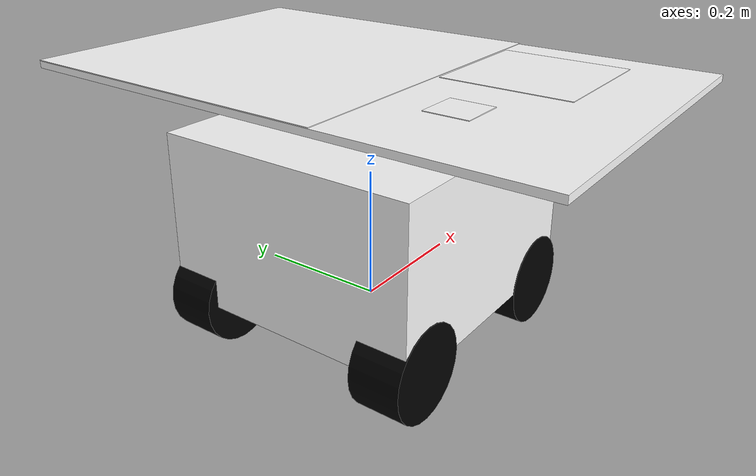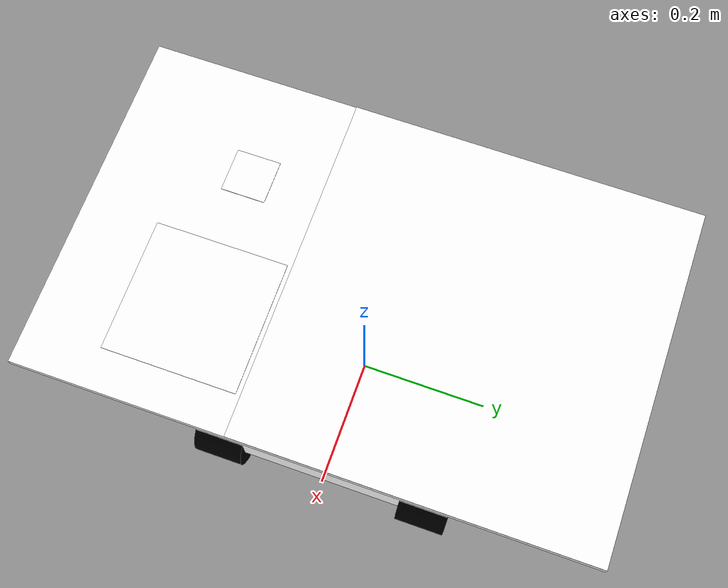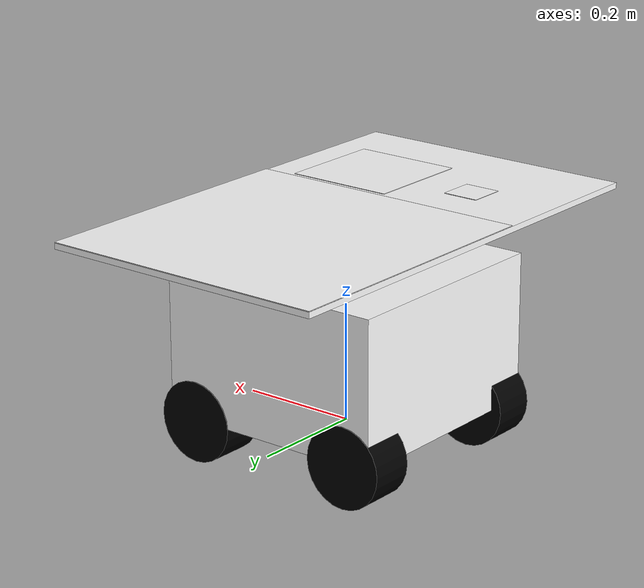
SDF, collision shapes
<?xml version="1.0" encoding="UTF-8"?>
<sdf version="1.9">

  <model name="r1_rover_with_apriltag">
    <static>false</static>

    <!-- ================= R1 Rover ================= -->
    <include>
      <uri>model://r1_rover</uri>
      <name>r1</name>
      <pose>0 0 0 0 0 0</pose>
    </include>

    <!-- ================= AprilTag ================= -->

      <!-- Mounted on top of rover -->

    <!-- ================= Fixed Joint ================= -->

    <!-- Multiple Apriltag board -->
    <link name="background_board">
      <pose>0 0 0.35 0 0 0</pose>
      <visual name="board_visual">
        <geometry>
          <box>
            <size>0.5 0.8 0.01</size> </box>
        </geometry>
        <material>
          <ambient>1 1 1 1</ambient>
          <diffuse>1 1 1 1</diffuse>
        </material>
      </visual>
      <collision name="board_collision">
        <geometry>
          <box>
            <size>0.5 0.8 0.01</size>
          </box>
        </geometry>
      </collision>
    </link>

    <joint name="board_joint" type="fixed">
      <parent>r1::base_link</parent>
      <child>background_board</child>
    </joint>

    <include>
      <uri>model://apriltag_36h11_23_400mm</uri>
      <name>apriltag_large</name>
      <pose>0 0.15 0.356 0 0 0</pose> </include>

    <joint name="apriltag_large_joint" type="fixed">
      <parent>background_board</parent>
      <child>apriltag_large::apriltag_36h11_23_400mm_link</child>
    </joint>

    <include>
      <uri>model://apriltag_36h11_11_150mm</uri>
      <name>apriltag_medium</name>
      <pose>0.1 -0.20 0.357 0 0 0</pose> </include>

    <joint name="apriltag_medium_joint" type="fixed">
      <parent>background_board</parent>
      <child>apriltag_medium::apriltag_36h11_11_150mm_link</child>
    </joint>

    <include>
      <uri>model://apriltag_36h11_19_50mm</uri>
      <name>apriltag_small</name>
      <pose>-0.1 -0.20 0.358 0 0 0</pose> </include>

    <joint name="apriltag_small_joint" type="fixed">
      <parent>background_board</parent>
      <child>apriltag_small::apriltag_36h11_19_50mm_link</child>
    </joint>

  </model>

</sdf>

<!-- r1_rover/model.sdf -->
<sdf version='1.6'>
	<model name='r1_rover'>
	<link name='base_link'>
			<pose>0 0 0 0 -0 0</pose>
			<inertial>
				<pose>0 0 0 0 -0 0</pose>
				<mass>20.0</mass>
				<inertia>
					<ixx>0.37083</ixx>
					<ixy>0.0</ixy>
					<ixz>0.0</ixz>
					<iyy>0.37083</iyy>
					<iyz>0.0</iyz>
					<izz>0.53333</izz>
				</inertia>
			</inertial>
			<collision name='odom_fixed_joint_lump__base_link_collision'>
				<pose>0 0 0.15 0 -0 0</pose>
				<geometry>
					<box>
					<size>0.4 0.4 0.25</size>
					</box>
				</geometry>
				<surface>
					<contact>
						<ode/>
					</contact>
					<friction>
						<ode/>
					</friction>
				</surface>
			</collision>
			<visual name='odom_fixed_joint_lump__base_link_visual'>
				<pose>0 0 0 0 -0 0</pose>
				<geometry>
					<mesh>
						<scale>1 1 1</scale>
						<uri>model://r1_rover/meshes/chassis_link.STL</uri>
					</mesh>
				</geometry>
				<material>
					<diffuse>1.0 1.0 1.0</diffuse>
					<specular>1.0 1.0 1.0</specular>
				</material>
			</visual>
			<visual name='odom_fixed_joint_lump__top_link_visual_1'>
				<pose>0 0 0.114486 0 -0 0</pose>
				<geometry>
					<mesh>
						<scale>1 1 1</scale>
						<uri>model://r1_rover/meshes/top_link.STL</uri>
					</mesh>
				</geometry>
				<material>
					<diffuse>1.0 1.0 1.0</diffuse>
					<specular>1.0 1.0 1.0</specular>
				</material>
			</visual>
			<visual name='odom_fixed_joint_lump__battery_link_visual_2'>
				<pose>-0.09302 -0.000128 0.114486 0 -0 0</pose>
				<geometry>
					<mesh>
						<scale>1 1 1</scale>
						<uri>model://r1_rover/meshes/battery_link.STL</uri>
					</mesh>
				</geometry>
				<material>
					<diffuse>0.0 0.0 0.0</diffuse>
					<specular>0.5 0.5 0.5</specular>
				</material>
			</visual>
			<visual name='odom_fixed_joint_lump__housing_link_visual_3'>
				<pose>0.03473 0 0.114486 0 -0 0</pose>
				<geometry>
					<mesh>
						<scale>1 1 1</scale>
						<uri>model://r1_rover/meshes/housing_link.STL</uri>
					</mesh>
				</geometry>
				<material>
					<diffuse>0.0 0.0 0.0</diffuse>
					<specular>0.5 0.5 0.5</specular>
				</material>
			</visual>
			<visual name='odom_fixed_joint_lump__l_antenna_link_visual_4'>
				<pose>-0.1565 0.0762 0.114486 0 -0 0</pose>
				<geometry>
					<mesh>
						<scale>1 1 1</scale>
						<uri>model://r1_rover/meshes/antenna_link.STL</uri>
					</mesh>
				</geometry>
				<material>
					<diffuse>0.0 0.0 0.0</diffuse>
					<specular>0.5 0.5 0.5</specular>
				</material>
			</visual>
			<visual name='odom_fixed_joint_lump__r_antenna_link_visual_5'>
				<pose>-0.1565 -0.0762 0.114486 0 -0 0</pose>
				<geometry>
					<mesh>
						<scale>1 1 1</scale>
						<uri>model://r1_rover/meshes/antenna_link.STL</uri>
					</mesh>
				</geometry>
				<material>
					<diffuse>0.0 0.0 0.0</diffuse>
					<specular>0.5 0.5 0.5</specular>
				</material>
			</visual>
			<velocity_decay/>
			<velocity_decay/>
			<velocity_decay/>
			<velocity_decay/>
			<velocity_decay/>
			<gravity>1</gravity>
			<velocity_decay/>
			<sensor name="imu_sensor" type="imu">
				<always_on>1</always_on>
				<update_rate>250</update_rate>
				<imu>
					<angular_velocity>
						<x>
						<noise type="gaussian">
							<mean>0</mean>
							<stddev>0.0003394</stddev>
							<dynamic_bias_stddev>3.8785e-05</dynamic_bias_stddev>
							<dynamic_bias_correlation_time>1000</dynamic_bias_correlation_time>
						</noise>
						</x>
						<y>
						<noise type="gaussian">
							<mean>0</mean>
							<stddev>0.0003394</stddev>
							<dynamic_bias_stddev>3.8785e-05</dynamic_bias_stddev>
							<dynamic_bias_correlation_time>1000</dynamic_bias_correlation_time>
						</noise>
						</y>
						<z>
						<noise type="gaussian">
							<mean>0</mean>
							<stddev>0.0003394</stddev>
							<dynamic_bias_stddev>3.8785e-05</dynamic_bias_stddev>
							<dynamic_bias_correlation_time>1000</dynamic_bias_correlation_time>
						</noise>
						</z>
					</angular_velocity>
					<linear_acceleration>
						<x>
						<noise type="gaussian">
							<mean>0</mean>
							<stddev>0.004</stddev>
							<dynamic_bias_stddev>0.006</dynamic_bias_stddev>
							<dynamic_bias_correlation_time>300</dynamic_bias_correlation_time>
						</noise>
						</x>
						<y>
						<noise type="gaussian">
							<mean>0</mean>
							<stddev>0.004</stddev>
							<dynamic_bias_stddev>0.006</dynamic_bias_stddev>
							<dynamic_bias_correlation_time>300</dynamic_bias_correlation_time>
						</noise>
						</y>
						<z>
						<noise type="gaussian">
							<mean>0</mean>
							<stddev>0.004</stddev>
							<dynamic_bias_stddev>0.006</dynamic_bias_stddev>
							<dynamic_bias_correlation_time>300</dynamic_bias_correlation_time>
						</noise>
						</z>
					</linear_acceleration>
				</imu>
			</sensor>
			<sensor name="air_pressure_sensor" type="air_pressure">
				<always_on>1</always_on>
				<update_rate>50</update_rate>
				<air_pressure>
					<pressure>
						<noise type="gaussian">
							<mean>0</mean>
							<stddev>0.01</stddev>
						</noise>
					</pressure>
				</air_pressure>
			</sensor>
			<sensor name="magnetometer_sensor" type="magnetometer">
				<always_on>1</always_on>
				<update_rate>100</update_rate>
				<magnetometer>
				<!-- TODO: update to fix units and coordinate system when we move past Harmonic -->
				<!-- See https://github.com/gazebosim/gz-sim/pull/2460 -->
				<!-- 3mgauss RMS: NOTE: noise is in tesla but sensor reports data in gauss -->
				<!-- Noise modeled after IIS2MDC -->
					<x>
						<noise type="gaussian">
						<stddev>0.0001</stddev>
						</noise>
					</x>
					<y>
						<noise type="gaussian">
						<stddev>0.0001</stddev>
						</noise>
					</y>
					<z>
						<noise type="gaussian">
						<stddev>0.0001</stddev>
						</noise>
					</z>
				</magnetometer>
			</sensor>
			<sensor name="navsat_sensor" type="navsat">
				<always_on>1</always_on>
				<update_rate>30</update_rate>
			</sensor>
		</link>
		<link name='lf_wheel_link'>
			<pose>0.15 0.16317 0.0215 0 -0 0</pose>
			<inertial>
				<pose>0 0 0 1.57079632679 0 0</pose>
				<mass>0.414</mass>
				<inertia>
					<ixx>0.00068682</ixx>
					<ixy>0</ixy>
					<ixz>0</ixz>
					<iyy>0.00068682</iyy>
					<iyz>0</iyz>
					<izz>0.00097299</izz>
				</inertia>
			</inertial>
			<collision name='lf_wheel_link_collision'>
				<pose>0 0 0 1.57079632679 0 0</pose>
				<geometry>
					<cylinder>
						<radius>0.0686</radius>
						<length>0.0762</length>
					</cylinder>
				</geometry>
				<max_contacts>1</max_contacts>
				<surface>
					<friction>
						<torsional>
							<coefficient>0.25</coefficient>
							<use_patch_radius>1</use_patch_radius>
							<surface_radius>0.0686</surface_radius>
						</torsional>
						<ode>
							<mu>1.0</mu>
							<mu2>1.0</mu2>
							<fdir1>1 0 0</fdir1>
							<slip1>0.0</slip1>
							<slip2>0.0</slip2>
						</ode>
					</friction>
					<bounce>
						<restitution_coefficient>0</restitution_coefficient>
						<threshold>1e6</threshold>
					</bounce>
					<contact>
						<ode>
							<min_depth>0.001</min_depth>
							<max_vel>0.0</max_vel>
							<kp>1.0e6</kp>
							<kd>100.0</kd>
						</ode>
					</contact>
				</surface>
			</collision>
			<visual name='lf_wheel_link_visual'>
				<pose>0 0 0 0 -0 0</pose>
				<geometry>
					<mesh>
						<scale>1 1 1</scale>
						<uri>model://r1_rover/meshes/wheel_link.STL</uri>
					</mesh>
				</geometry>
				<material>
					<diffuse>0.0 0.0 0.0</diffuse>
					<specular>0.5 0.5 0.5</specular>
				</material>
			</visual>
			<gravity>1</gravity>
			<velocity_decay/>
		</link>
		<joint name='motor_0' type='revolute'>
			<child>lf_wheel_link</child>
			<parent>base_link</parent>
			<axis>
				<xyz>0 1 0</xyz>
				<limit>
					<lower>-1e+16</lower>
					<upper>1e+16</upper>
				</limit>
				<dynamics>
					<spring_reference>0</spring_reference>
					<spring_stiffness>0</spring_stiffness>
				</dynamics>
				<use_parent_model_frame>1</use_parent_model_frame>
			</axis>
		</joint>
		<link name='lb_wheel_link'>
			<pose>-0.15 0.16317 0.0215 0 -0 0</pose>
			<inertial>
			<pose>0 0 0 1.57079632679 0 0</pose>
			<mass>0.414</mass>
				<inertia>
					<ixx>0.00068682</ixx>
					<ixy>0</ixy>
					<ixz>0</ixz>
					<iyy>0.00068682</iyy>
					<iyz>0</iyz>
					<izz>0.00097299</izz>
				</inertia>
			</inertial>
			<collision name='lb_wheel_link_collision'>
				<pose>0 0 0 1.57079632679 0 0</pose>
				<geometry>
					<cylinder>
						<radius>0.0686</radius>
						<length>0.0762</length>
					</cylinder>
				</geometry>
				<max_contacts>1</max_contacts>
				<surface>
					<friction>
					<torsional>
						<coefficient>0.25</coefficient>
						<use_patch_radius>1</use_patch_radius>
						<surface_radius>0.0686</surface_radius>
					</torsional>
					<ode>
						<mu>1.0</mu>
						<mu2>1.0</mu2>
						<fdir1>1 0 0</fdir1>
						<slip1>0.0</slip1>
						<slip2>0.0</slip2>
					</ode>
					</friction>
					<bounce>
						<restitution_coefficient>0</restitution_coefficient>
						<threshold>1e6</threshold>
					</bounce>
					<contact>
					<ode>
						<min_depth>0.001</min_depth>
						<max_vel>0.0</max_vel>
						<kp>1.0e6</kp>
						<kd>100.0</kd>
					</ode>
					</contact>
				</surface>
			</collision>
			<visual name='lb_wheel_link_visual'>
				<pose>0 0 0 0 -0 0</pose>
					<geometry>
						<mesh>
							<scale>1 1 1</scale>
							<uri>model://r1_rover/meshes/wheel_link.STL</uri>
						</mesh>
					</geometry>
					<material>
						<diffuse>0.0 0.0 0.0</diffuse>
						<specular>0.5 0.5 0.5</specular>
					</material>
			</visual>
			<gravity>1</gravity>
			<velocity_decay/>
		</link>
		<joint name='motor_1' type='revolute'>
			<child>lb_wheel_link</child>
			<parent>base_link</parent>
			<axis>
				<xyz>0 1 0</xyz>
				<limit>
					<lower>-1e+16</lower>
					<upper>1e+16</upper>
				</limit>
				<dynamics>
					<spring_reference>0</spring_reference>
					<spring_stiffness>0</spring_stiffness>
				</dynamics>
				<use_parent_model_frame>1</use_parent_model_frame>
			</axis>
		</joint>
		<link name='rf_wheel_link'>
			<pose>0.15 -0.16317 0.0215 0 -0 0</pose>
			<inertial>
				<pose>0 0 0 1.57079632679 0 0</pose>
				<mass>0.414</mass>
				<inertia>
					<ixx>0.00068682</ixx>
					<ixy>0</ixy>
					<ixz>0</ixz>
					<iyy>0.00068682</iyy>
					<iyz>0</iyz>
					<izz>0.00097299</izz>
				</inertia>
			</inertial>
			<collision name='rf_wheel_link_collision'>
				<pose>0 0 0 1.57079632679 0 0</pose>
				<geometry>
					<cylinder>
						<radius>0.0686</radius>
						<length>0.0762</length>
					</cylinder>
				</geometry>
				<max_contacts>1</max_contacts>
				<surface>
					<friction>
					<torsional>
					<coefficient>0.25</coefficient>
					<use_patch_radius>1</use_patch_radius>
					<surface_radius>0.0686</surface_radius>
					</torsional>
					<ode>
					<mu>1.0</mu>
					<mu2>1.0</mu2>
					<fdir1>1 0 0</fdir1>
					<slip1>0.0</slip1>
					<slip2>0.0</slip2>
					</ode>
					</friction>
					<bounce>
					<restitution_coefficient>0</restitution_coefficient>
					<threshold>1e6</threshold>
					</bounce>
					<contact>
					<ode>
					<min_depth>0.001</min_depth>
					<max_vel>0.0</max_vel>
					<kp>1.0e6</kp>
					<kd>100.0</kd>
					</ode>
					</contact>
				</surface>
			</collision>
			<visual name='rf_wheel_link_visual'>
				<pose>0 0 0 0 -0 0</pose>
				<geometry>
					<mesh>
						<scale>1 1 1</scale>
						<uri>model://r1_rover/meshes/wheel_link.STL</uri>
					</mesh>
				</geometry>
				<material>
					<diffuse>0.0 0.0 0.0</diffuse>
					<specular>0.5 0.5 0.5</specular>
				</material>
			</visual>
			<gravity>1</gravity>
			<velocity_decay/>
		</link>
		<joint name='motor_2' type='revolute'>
			<child>rf_wheel_link</child>
			<parent>base_link</parent>
			<axis>
				<xyz>0 1 0</xyz>
				<limit>
					<lower>-1e+16</lower>
					<upper>1e+16</upper>
				</limit>
				<dynamics>
					<spring_reference>0</spring_reference>
					<spring_stiffness>0</spring_stiffness>
				</dynamics>
				<use_parent_model_frame>1</use_parent_model_frame>
			</axis>
		</joint>
		<link name='rb_wheel_link'>
			<pose>-0.15 -0.16317 0.0215 0 -0 0</pose>
			<inertial>
				<pose>0 0 0 1.57079632679 0 0</pose>
				<mass>0.414</mass>
				<inertia>
					<ixx>0.00068682</ixx>
					<ixy>0</ixy>
					<ixz>0</ixz>
					<iyy>0.00068682</iyy>
					<iyz>0</iyz>
					<izz>0.00097299</izz>
				</inertia>
			</inertial>
			<collision name='rb_wheel_link_collision'>
				<pose>0 0 0 1.57079632679 0 0</pose>
				<geometry>
					<cylinder>
						<radius>0.0686</radius>
						<length>0.0762</length>
					</cylinder>
				</geometry>
				<max_contacts>1</max_contacts>
				<surface>
					<friction>
						<torsional>
							<coefficient>0.25</coefficient>
							<use_patch_radius>1</use_patch_radius>
							<surface_radius>0.0686</surface_radius>
						</torsional>
						<ode>
							<mu>1.0</mu>
							<mu2>1.0</mu2>
							<fdir1>1 0 0</fdir1>
							<slip1>0.0</slip1>
							<slip2>0.0</slip2>
						</ode>
					</friction>
					<bounce>
						<restitution_coefficient>0</restitution_coefficient>
						<threshold>1e6</threshold>
					</bounce>
					<contact>
						<ode>
							<min_depth>0.001</min_depth>
							<kp>1e8</kp>
						</ode>
					</contact>
				</surface>
			</collision>
			<visual name='rb_wheel_link_visual'>
				<pose>0 0 0 0 -0 0</pose>
				<geometry>
					<mesh>
						<scale>1 1 1</scale>
						<uri>model://r1_rover/meshes/wheel_link.STL</uri>
					</mesh>
				</geometry>
				<material>
					<diffuse>0.0 0.0 0.0</diffuse>
					<specular>0.5 0.5 0.5</specular>
				</material>
			</visual>
			<gravity>1</gravity>
			<velocity_decay/>
		</link>
		<joint name='motor_3' type='revolute'>
			<child>rb_wheel_link</child>
			<parent>base_link</parent>
			<axis>
				<xyz>0 1 0</xyz>
				<limit>
					<lower>-1e+16</lower>
					<upper>1e+16</upper>
				</limit>
				<dynamics>
					<spring_reference>0</spring_reference>
					<spring_stiffness>0</spring_stiffness>
				</dynamics>
				<use_parent_model_frame>1</use_parent_model_frame>
			</axis>
		</joint>
		<static>0</static>

		<plugin
			filename="gz-sim-diff-drive-system"	name="gz::sim::systems::DiffDrive">

			<left_joint>motor_0</left_joint>
			<left_joint>motor_1</left_joint>

			<right_joint>motor_2</right_joint>
			<right_joint>motor_3</right_joint>

			<wheel_separation>0.4</wheel_separation>
			<wheel_radius>0.0686</wheel_radius>

			<max_linear_acceleration>2</max_linear_acceleration>
			<min_linear_acceleration>-2</min_linear_acceleration>
			<max_angular_acceleration>2</max_angular_acceleration>
			<min_angular_acceleration>-2</min_angular_acceleration>

			<topic>/r1/cmd_vel</topic>
			<odom_topic>/r1/odom</odom_topic>
			<tf_topic>/r1/tf</tf_topic>
			<frame_id>odom</frame_id>
			<child_frame_id>base_link</child_frame_id>
		</plugin>

		<plugin
			filename="gz-sim-joint-state-publisher-system"
			name="gz::sim::systems::JointStatePublisher">
			<joint_name>motor_0</joint_name>
			<joint_name>motor_1</joint_name>
			<joint_name>motor_2</joint_name>
			<joint_name>motor_3</joint_name>
		</plugin>
	</model>
</sdf>

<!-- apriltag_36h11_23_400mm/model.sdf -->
<sdf version="1.9">
  <model name="apriltag_36h11_23_400mm_500mm">
    <static>true</static>

    <link name="apriltag_36h11_23_400mm_link">

      <collision name="collision">
        <pose>0 0 0 0 0 0</pose>
        <geometry>
          <box>
            <size>0.5 0.5 0.001</size>
          </box>
        </geometry>
      </collision>

      <visual name="apriltag_36h11_23_400mm_visual">
        <pose>0 0 0 0 0 0</pose> <geometry>
          <box>
            <size>0.5 0.5 0.001</size>
          </box>
        </geometry>
        <material>
          <diffuse>1 1 1 1</diffuse>
          <specular>0.4 0.4 0.4 1</specular>
          <pbr>
            <metal>
              <albedo_map>model://apriltag_36h11_23_400mm/materials/textures/tag36h11_23_400mm_500mm.png</albedo_map>
            </metal>
          </pbr>
        </material>
      </visual>

    </link>
  </model>
</sdf>

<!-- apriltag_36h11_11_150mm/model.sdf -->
<sdf version="1.9">
  <model name="apriltag_36h11_11_150mm_187.5mm">
    <static>true</static>

    <link name="apriltag_36h11_11_150mm_link">

      <collision name="collision">
        <pose>0 0 0 0 0 0</pose>
        <geometry>
          <box>
            <size>0.1875 0.1875 0.001</size>
          </box>
        </geometry>
      </collision>

      <visual name="apriltag_36h11_11_150mm_visual">
        <pose>0 0 0 0 0 0</pose>
        <geometry>
          <box>
            <size>0.1875 0.1875 0.001</size>
          </box>
        </geometry>
        <material>
          <diffuse>1 1 1 1</diffuse>
          <specular>0.4 0.4 0.4 1</specular>
          <pbr>
            <metal>
              <albedo_map>model://apriltag_36h11_11_150mm/materials/textures/tag36h11_11_150mm_187.5mm.png</albedo_map>
            </metal>
          </pbr>
        </material>
      </visual>

    </link>
  </model>
</sdf>

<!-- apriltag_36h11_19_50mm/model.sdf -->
<sdf version="1.9">
  <model name="apriltag_36h11_19_50mm_62.5mm">
    <static>true</static>

    <link name="apriltag_36h11_19_50mm_link">

      <collision name="collision">
        <pose>0 0 0 0 0 0</pose>
        <geometry>
          <box>
            <size>0.0625 0.0625 0.001</size>
          </box>
        </geometry>
      </collision>

      <visual name="apriltag_36h11_19_50mm_visual">
        <pose>0 0 0 0 0 0</pose>
        <geometry>
          <box>
            <size>0.0625 0.0625 0.001</size>
          </box>
        </geometry>
        <material>
          <diffuse>1 1 1 1</diffuse>
          <specular>0.4 0.4 0.4 1</specular>
          <pbr>
            <metal>
              <albedo_map>model://apriltag_36h11_19_50mm/materials/textures/tag36h11_19_50mm_62.5mm.png</albedo_map>
            </metal>
          </pbr>
        </material>
      </visual>

    </link>
  </model>
</sdf>
